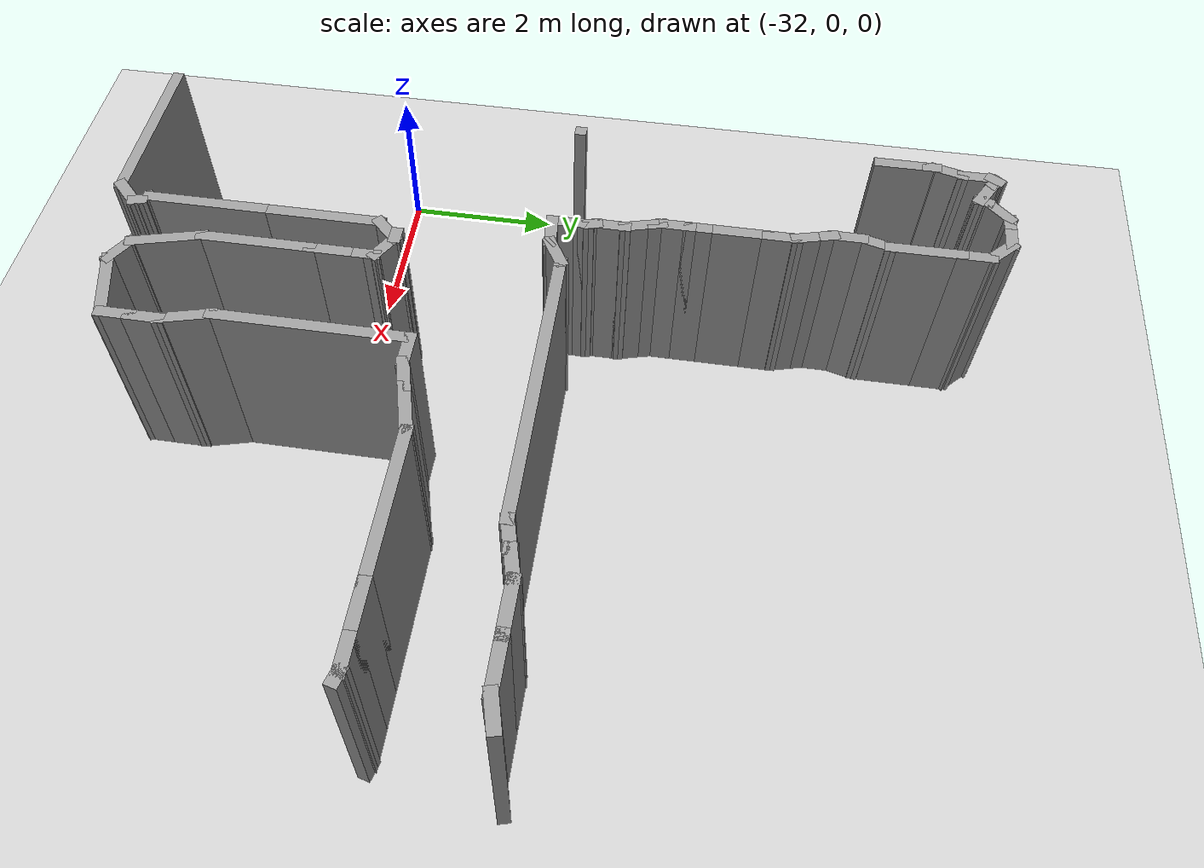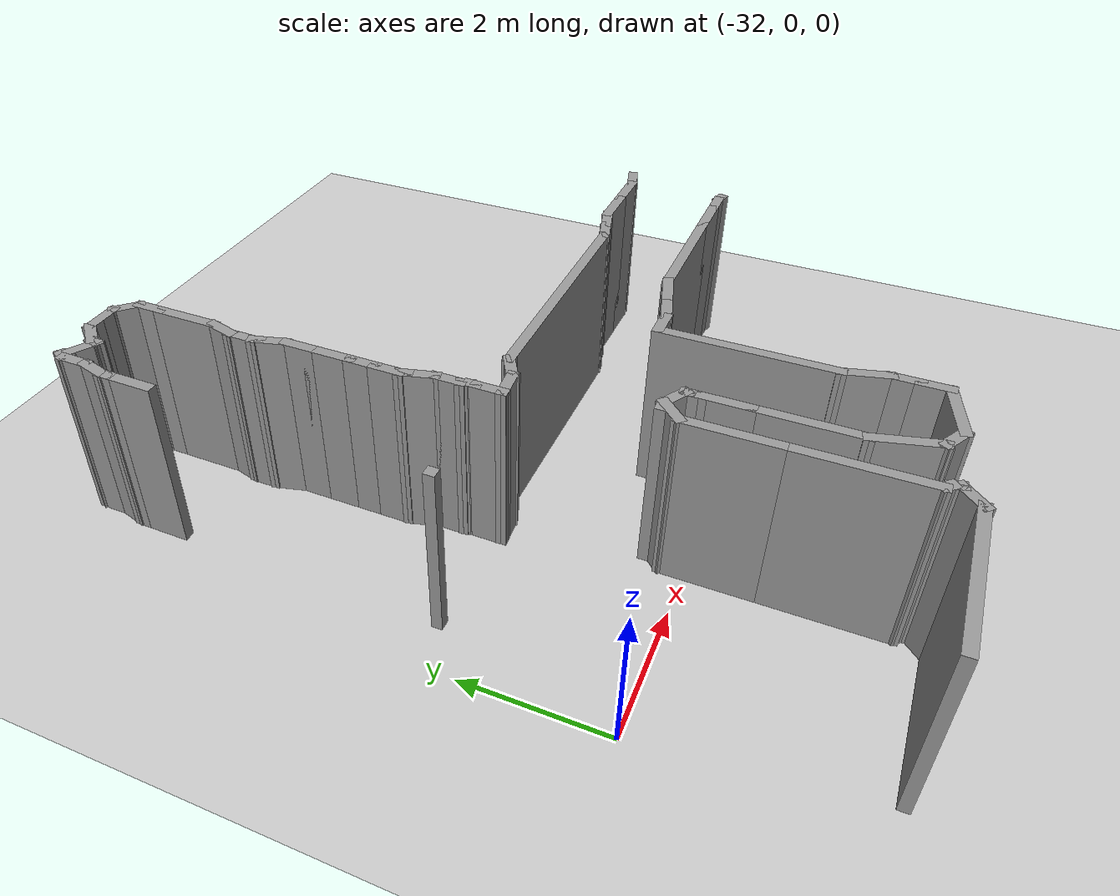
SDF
<sdf version="1.7">
 <world name="default">
  <model name="ground_plane">
   <static>1</static>
   <link name="link">
    <collision name="collision">
     <geometry><plane><normal>0 0 1</normal><size>100 100</size></plane></geometry>
     <surface>
      <contact><collide_bitmask>65535</collide_bitmask></contact>
      <friction><ode><mu>100</mu><mu2>50</mu2></ode></friction>
     </surface>
    </collision>
    <visual name="visual">
     <cast_shadows>0</cast_shadows>
     <geometry><plane><normal>0 0 1</normal><size>100 100</size></plane></geometry>
     <material>
      <script><uri>file://media/materials/scripts/gazebo.material</uri><name>Gazebo/Grey</name></script>
     </material>
    </visual>
   </link>
  </model>
  <model name="robovisor_env">
   <pose>-13 -0.201839 0 0 0 3.14</pose>
   <link name="Wall_161">
    <collision name="Wall_161_Collision">
     <geometry><box><size>0.25 0.15 2.5</size></box></geometry>
     <pose>0 0 1.25 0 -0 0</pose>
    </collision>
    <visual name="Wall_161_Visual">
     <pose>0 0 1.25 0 -0 0</pose>
     <geometry><box><size>0.25 0.15 2.5</size></box></geometry>
     <material>
      <script><uri>file://media/materials/scripts/gazebo.material</uri><name>Gazebo/Grey</name></script>
      <ambient>1 1 1 1</ambient>
     </material>
     <meta><layer>0</layer></meta>
    </visual>
    <pose>10.451 -1.52035 0 0 -0 -0.261799</pose>
   </link>
   <link name="Wall_162">
    <collision name="Wall_162_Collision">
     <geometry><box><size>0.5 0.15 2.5</size></box></geometry>
     <pose>0 0 1.25 0 -0 0</pose>
    </collision>
    <visual name="Wall_162_Visual">
     <pose>0 0 1.25 0 -0 0</pose>
     <geometry><box><size>0.5 0.15 2.5</size></box></geometry>
     <material>
      <script><uri>file://media/materials/scripts/gazebo.material</uri><name>Gazebo/Grey</name></script>
      <ambient>1 1 1 1</ambient>
     </material>
     <meta><layer>0</layer></meta>
    </visual>
    <pose>10.6743 -1.53329 0 0 -0 0</pose>
   </link>
   <link name="Wall_163">
    <collision name="Wall_163_Collision">
     <geometry><box><size>0.75 0.15 2.5</size></box></geometry>
     <pose>0 0 1.25 0 -0 0</pose>
    </collision>
    <visual name="Wall_163_Visual">
     <pose>0 0 1.25 0 -0 0</pose>
     <geometry><box><size>0.75 0.15 2.5</size></box></geometry>
     <material>
      <script><uri>file://media/materials/scripts/gazebo.material</uri><name>Gazebo/Grey</name></script>
      <ambient>1 1 1 1</ambient>
     </material>
     <meta><layer>0</layer></meta>
    </visual>
    <pose>11.1493 -1.53329 0 0 -0 0</pose>
   </link>
   <link name="Wall_164">
    <collision name="Wall_164_Collision">
     <geometry><box><size>2 0.15 2.5</size></box></geometry>
     <pose>0 0 1.25 0 -0 0</pose>
    </collision>
    <visual name="Wall_164_Visual">
     <pose>0 0 1.25 0 -0 0</pose>
     <geometry><box><size>2 0.15 2.5</size></box></geometry>
     <material>
      <script><uri>file://media/materials/scripts/gazebo.material</uri><name>Gazebo/Grey</name></script>
      <ambient>1 1 1 1</ambient>
     </material>
     <meta><layer>0</layer></meta>
    </visual>
    <pose>12.3743 -1.53329 0 0 -0 0</pose>
   </link>
   <link name="Wall_165">
    <collision name="Wall_165_Collision">
     <geometry><box><size>0.75 0.15 2.5</size></box></geometry>
     <pose>0 0 1.25 0 -0 0</pose>
    </collision>
    <visual name="Wall_165_Visual">
     <pose>0 0 1.25 0 -0 0</pose>
     <geometry><box><size>0.75 0.15 2.5</size></box></geometry>
     <material>
      <script><uri>file://media/materials/scripts/gazebo.material</uri><name>Gazebo/Grey</name></script>
      <ambient>1 1 1 1</ambient>
     </material>
     <meta><layer>0</layer></meta>
    </visual>
    <pose>13.5891 -1.45564 0 0 -0 0.261799</pose>
   </link>
   <link name="Wall_166">
    <collision name="Wall_166_Collision">
     <geometry><box><size>0.5 0.15 2.5</size></box></geometry>
     <pose>0 0 1.25 0 -0 0</pose>
    </collision>
    <visual name="Wall_166_Visual">
     <pose>0 0 1.25 0 -0 0</pose>
     <geometry><box><size>0.5 0.15 2.5</size></box></geometry>
     <material>
      <script><uri>file://media/materials/scripts/gazebo.material</uri><name>Gazebo/Grey</name></script>
      <ambient>1 1 1 1</ambient>
     </material>
     <meta><layer>0</layer></meta>
    </visual>
    <pose>14.0479 -1.3327 0 0 -0 0.261799</pose>
   </link>
   <link name="Wall_167">
    <collision name="Wall_167_Collision">
     <geometry><box><size>0.5 0.15 2.5</size></box></geometry>
     <pose>0 0 1.25 0 -0 0</pose>
    </collision>
    <visual name="Wall_167_Visual">
     <pose>0 0 1.25 0 -0 0</pose>
     <geometry><box><size>0.5 0.15 2.5</size></box></geometry>
     <material>
      <script><uri>file://media/materials/scripts/gazebo.material</uri><name>Gazebo/Grey</name></script>
      <ambient>1 1 1 1</ambient>
     </material>
     <meta><layer>0</layer></meta>
    </visual>
    <pose>14.3919 -1.28741 0 0 -0 0</pose>
   </link>
   <link name="Wall_168">
    <collision name="Wall_168_Collision">
     <geometry><box><size>2.5 0.15 2.5</size></box></geometry>
     <pose>0 0 1.25 0 -0 0</pose>
    </collision>
    <visual name="Wall_168_Visual">
     <pose>0 0 1.25 0 -0 0</pose>
     <geometry><box><size>2.5 0.15 2.5</size></box></geometry>
     <material>
      <script><uri>file://media/materials/scripts/gazebo.material</uri><name>Gazebo/Grey</name></script>
      <ambient>1 1 1 1</ambient>
     </material>
     <meta><layer>0</layer></meta>
    </visual>
    <pose>14.5669 -0.112408 0 0 -0 1.5708</pose>
   </link>
   <link name="Wall_169">
    <collision name="Wall_169_Collision">
     <geometry><box><size>0.75 0.15 2.5</size></box></geometry>
     <pose>0 0 1.25 0 -0 0</pose>
    </collision>
    <visual name="Wall_169_Visual">
     <pose>0 0 1.25 0 -0 0</pose>
     <geometry><box><size>0.75 0.15 2.5</size></box></geometry>
     <material>
      <script><uri>file://media/materials/scripts/gazebo.material</uri><name>Gazebo/Grey</name></script>
      <ambient>1 1 1 1</ambient>
     </material>
     <meta><layer>0</layer></meta>
    </visual>
    <pose>14.4893 1.35237 0 0 -0 1.8326</pose>
   </link>
   <link name="Wall_170">
    <collision name="Wall_170_Collision">
     <geometry><box><size>0.5 0.15 2.5</size></box></geometry>
     <pose>0 0 1.25 0 -0 0</pose>
    </collision>
    <visual name="Wall_170_Visual">
     <pose>0 0 1.25 0 -0 0</pose>
     <geometry><box><size>0.5 0.15 2.5</size></box></geometry>
     <material>
      <script><uri>file://media/materials/scripts/gazebo.material</uri><name>Gazebo/Grey</name></script>
      <ambient>1 1 1 1</ambient>
     </material>
     <meta><layer>0</layer></meta>
    </visual>
    <pose>14.4116 1.81715 0 0 -0 1.5708</pose>
   </link>
   <link name="Wall_171">
    <collision name="Wall_171_Collision">
     <geometry><box><size>0.5 0.15 2.5</size></box></geometry>
     <pose>0 0 1.25 0 -0 0</pose>
    </collision>
    <visual name="Wall_171_Visual">
     <pose>0 0 1.25 0 -0 0</pose>
     <geometry><box><size>0.5 0.15 2.5</size></box></geometry>
     <material>
      <script><uri>file://media/materials/scripts/gazebo.material</uri><name>Gazebo/Grey</name></script>
      <ambient>1 1 1 1</ambient>
     </material>
     <meta><layer>0</layer></meta>
    </visual>
    <pose>14.4116 2.16715 0 0 -0 1.5708</pose>
   </link>
   <link name="Wall_172">
    <collision name="Wall_172_Collision">
     <geometry><box><size>1 0.15 2.5</size></box></geometry>
     <pose>0 0 1.25 0 -0 0</pose>
    </collision>
    <visual name="Wall_172_Visual">
     <pose>0 0 1.25 0 -0 0</pose>
     <geometry><box><size>1 0.15 2.5</size></box></geometry>
     <material>
      <script><uri>file://media/materials/scripts/gazebo.material</uri><name>Gazebo/Grey</name></script>
      <ambient>1 1 1 1</ambient>
     </material>
     <meta><layer>0</layer></meta>
    </visual>
    <pose>14.8221 2.45214 0 0 -0 0.261799</pose>
   </link>
   <link name="Wall_173">
    <collision name="Wall_173_Collision">
     <geometry><box><size>0.5 0.15 2.5</size></box></geometry>
     <pose>0 0 1.25 0 -0 0</pose>
    </collision>
    <visual name="Wall_173_Visual">
     <pose>0 0 1.25 0 -0 0</pose>
     <geometry><box><size>0.5 0.15 2.5</size></box></geometry>
     <material>
      <script><uri>file://media/materials/scripts/gazebo.material</uri><name>Gazebo/Grey</name></script>
      <ambient>1 1 1 1</ambient>
     </material>
     <meta><layer>0</layer></meta>
    </visual>
    <pose>15.3842 2.47464 0 0 -0 -0.523599</pose>
   </link>
   <link name="Wall_174">
    <collision name="Wall_174_Collision">
     <geometry><box><size>0.15 0.15 2.5</size></box></geometry>
     <pose>0 0 1.25 0 -0 0</pose>
    </collision>
    <visual name="Wall_174_Visual">
     <pose>0 0 1.25 0 -0 0</pose>
     <geometry><box><size>0.15 0.15 2.5</size></box></geometry>
     <material>
      <script><uri>file://media/materials/scripts/gazebo.material</uri><name>Gazebo/Grey</name></script>
      <ambient>1 1 1 1</ambient>
     </material>
     <meta><layer>0</layer></meta>
    </visual>
    <pose>15.5358 2.38714 0 0 -0 0</pose>
   </link>
   <link name="Wall_175">
    <collision name="Wall_175_Collision">
     <geometry><box><size>1 0.15 2.5</size></box></geometry>
     <pose>0 0 1.25 0 -0 0</pose>
    </collision>
    <visual name="Wall_175_Visual">
     <pose>0 0 1.25 0 -0 0</pose>
     <geometry><box><size>1 0.15 2.5</size></box></geometry>
     <material>
      <script><uri>file://media/materials/scripts/gazebo.material</uri><name>Gazebo/Grey</name></script>
      <ambient>1 1 1 1</ambient>
     </material>
     <meta><layer>0</layer></meta>
    </visual>
    <pose>15.6458 1.97663 0 0 -0 -1.309</pose>
   </link>
   <link name="Wall_176">
    <collision name="Wall_176_Collision">
     <geometry><box><size>1.5 0.15 2.5</size></box></geometry>
     <pose>0 0 1.25 0 -0 0</pose>
    </collision>
    <visual name="Wall_176_Visual">
     <pose>0 0 1.25 0 -0 0</pose>
     <geometry><box><size>1.5 0.15 2.5</size></box></geometry>
     <material>
      <script><uri>file://media/materials/scripts/gazebo.material</uri><name>Gazebo/Grey</name></script>
      <ambient>1 1 1 1</ambient>
     </material>
     <meta><layer>0</layer></meta>
    </visual>
    <pose>15.7558 0.891106 0 0 -0 -1.5708</pose>
   </link>
   <link name="Wall_177">
    <collision name="Wall_177_Collision">
     <geometry><box><size>0.75 0.15 2.5</size></box></geometry>
     <pose>0 0 1.25 0 -0 0</pose>
    </collision>
    <visual name="Wall_177_Visual">
     <pose>0 0 1.25 0 -0 0</pose>
     <geometry><box><size>0.75 0.15 2.5</size></box></geometry>
     <material>
      <script><uri>file://media/materials/scripts/gazebo.material</uri><name>Gazebo/Grey</name></script>
      <ambient>1 1 1 1</ambient>
     </material>
     <meta><layer>0</layer></meta>
    </visual>
    <pose>15.7558 -0.083894 0 0 -0 -1.5708</pose>
   </link>
   <link name="Wall_178">
    <collision name="Wall_178_Collision">
     <geometry><box><size>0.25 0.15 2.5</size></box></geometry>
     <pose>0 0 1.25 0 -0 0</pose>
    </collision>
    <visual name="Wall_178_Visual">
     <pose>0 0 1.25 0 -0 0</pose>
     <geometry><box><size>0.25 0.15 2.5</size></box></geometry>
     <material>
      <script><uri>file://media/materials/scripts/gazebo.material</uri><name>Gazebo/Grey</name></script>
      <ambient>1 1 1 1</ambient>
     </material>
     <meta><layer>0</layer></meta>
    </visual>
    <pose>15.7558 -0.433894 0 0 -0 -1.5708</pose>
   </link>
   <link name="Wall_179">
    <collision name="Wall_179_Collision">
     <geometry><box><size>0.25 0.15 2.5</size></box></geometry>
     <pose>0 0 1.25 0 -0 0</pose>
    </collision>
    <visual name="Wall_179_Visual">
     <pose>0 0 1.25 0 -0 0</pose>
     <geometry><box><size>0.25 0.15 2.5</size></box></geometry>
     <material>
      <script><uri>file://media/materials/scripts/gazebo.material</uri><name>Gazebo/Grey</name></script>
      <ambient>1 1 1 1</ambient>
     </material>
     <meta><layer>0</layer></meta>
    </visual>
    <pose>15.7558 -0.533894 0 0 -0 -1.5708</pose>
   </link>
   <link name="Wall_180">
    <collision name="Wall_180_Collision">
     <geometry><box><size>0.5 0.15 2.5</size></box></geometry>
     <pose>0 0 1.25 0 -0 0</pose>
    </collision>
    <visual name="Wall_180_Visual">
     <pose>0 0 1.25 0 -0 0</pose>
     <geometry><box><size>0.5 0.15 2.5</size></box></geometry>
     <material>
      <script><uri>file://media/materials/scripts/gazebo.material</uri><name>Gazebo/Grey</name></script>
      <ambient>1 1 1 1</ambient>
     </material>
     <meta><layer>0</layer></meta>
    </visual>
    <pose>15.9073 -0.671394 0 0 -0 -0.523599</pose>
   </link>
   <link name="Wall_181">
    <collision name="Wall_181_Collision">
     <geometry><box><size>0.25 0.15 2.5</size></box></geometry>
     <pose>0 0 1.25 0 -0 0</pose>
    </collision>
    <visual name="Wall_181_Visual">
     <pose>0 0 1.25 0 -0 0</pose>
     <geometry><box><size>0.25 0.15 2.5</size></box></geometry>
     <material>
      <script><uri>file://media/materials/scripts/gazebo.material</uri><name>Gazebo/Grey</name></script>
      <ambient>1 1 1 1</ambient>
     </material>
     <meta><layer>0</layer></meta>
    </visual>
    <pose>16.1089 -0.758894 0 0 -0 0</pose>
   </link>
   <link name="Wall_183">
    <collision name="Wall_183_Collision">
     <geometry><box><size>0.5 0.15 2.5</size></box></geometry>
     <pose>0 0 1.25 0 -0 0</pose>
    </collision>
    <visual name="Wall_183_Visual">
     <pose>0 0 1.25 0 -0 0</pose>
     <geometry><box><size>0.5 0.15 2.5</size></box></geometry>
     <material>
      <script><uri>file://media/materials/scripts/gazebo.material</uri><name>Gazebo/Grey</name></script>
      <ambient>1 1 1 1</ambient>
     </material>
     <meta><layer>0</layer></meta>
    </visual>
    <pose>16.1826 -0.63515 0 0 -0 0.785398</pose>
   </link>
   <link name="Wall_184">
    <collision name="Wall_184_Collision">
     <geometry><box><size>1.5 0.15 2.5</size></box></geometry>
     <pose>0 0 1.25 0 -0 0</pose>
    </collision>
    <visual name="Wall_184_Visual">
     <pose>0 0 1.25 0 -0 0</pose>
     <geometry><box><size>1.5 0.15 2.5</size></box></geometry>
     <material>
      <script><uri>file://media/materials/scripts/gazebo.material</uri><name>Gazebo/Grey</name></script>
      <ambient>1 1 1 1</ambient>
     </material>
     <meta><layer>0</layer></meta>
    </visual>
    <pose>16.3064 0.163594 0 0 -0 1.5708</pose>
   </link>
   <link name="Wall_185">
    <collision name="Wall_185_Collision">
     <geometry><box><size>1.75 0.15 2.5</size></box></geometry>
     <pose>0 0 1.25 0 -0 0</pose>
    </collision>
    <visual name="Wall_185_Visual">
     <pose>0 0 1.25 0 -0 0</pose>
     <geometry><box><size>1.75 0.15 2.5</size></box></geometry>
     <material>
      <script><uri>file://media/materials/scripts/gazebo.material</uri><name>Gazebo/Grey</name></script>
      <ambient>1 1 1 1</ambient>
     </material>
     <meta><layer>0</layer></meta>
    </visual>
    <pose>16.3064 1.63859 0 0 -0 1.5708</pose>
   </link>
   <link name="Wall_186">
    <collision name="Wall_186_Collision">
     <geometry><box><size>0.25 0.15 2.5</size></box></geometry>
     <pose>0 0 1.25 0 -0 0</pose>
    </collision>
    <visual name="Wall_186_Visual">
     <pose>0 0 1.25 0 -0 0</pose>
     <geometry><box><size>0.25 0.15 2.5</size></box></geometry>
     <material>
      <script><uri>file://media/materials/scripts/gazebo.material</uri><name>Gazebo/Grey</name></script>
      <ambient>1 1 1 1</ambient>
     </material>
     <meta><layer>0</layer></meta>
    </visual>
    <pose>16.271 2.47395 0 0 -0 2.35619</pose>
   </link>
   <link name="Wall_187">
    <collision name="Wall_187_Collision">
     <geometry><box><size>0.25 0.15 2.5</size></box></geometry>
     <pose>0 0 1.25 0 -0 0</pose>
    </collision>
    <visual name="Wall_187_Visual">
     <pose>0 0 1.25 0 -0 0</pose>
     <geometry><box><size>0.25 0.15 2.5</size></box></geometry>
     <material>
      <script><uri>file://media/materials/scripts/gazebo.material</uri><name>Gazebo/Grey</name></script>
      <ambient>1 1 1 1</ambient>
     </material>
     <meta><layer>0</layer></meta>
    </visual>
    <pose>16.2227 2.5576 0 0 -0 1.8326</pose>
   </link>
   <link name="Wall_188">
    <collision name="Wall_188_Collision">
     <geometry><box><size>0.5 0.15 2.5</size></box></geometry>
     <pose>0 0 1.25 0 -0 0</pose>
    </collision>
    <visual name="Wall_188_Visual">
     <pose>0 0 1.25 0 -0 0</pose>
     <geometry><box><size>0.5 0.15 2.5</size></box></geometry>
     <material>
      <script><uri>file://media/materials/scripts/gazebo.material</uri><name>Gazebo/Grey</name></script>
      <ambient>1 1 1 1</ambient>
     </material>
     <meta><layer>0</layer></meta>
    </visual>
    <pose>16.3335 2.72964 0 0 -0 0.785398</pose>
   </link>
   <link name="Wall_189">
    <collision name="Wall_189_Collision">
     <geometry><box><size>2.25 0.15 2.5</size></box></geometry>
     <pose>0 0 1.25 0 -0 0</pose>
    </collision>
    <visual name="Wall_189_Visual">
     <pose>0 0 1.25 0 -0 0</pose>
     <geometry><box><size>2.25 0.15 2.5</size></box></geometry>
     <material>
      <script><uri>file://media/materials/scripts/gazebo.material</uri><name>Gazebo/Grey</name></script>
      <ambient>1 1 1 1</ambient>
     </material>
     <meta><layer>0</layer></meta>
    </visual>
    <pose>17.5073 2.85338 0 0 -0 0</pose>
   </link>
   <link name="Wall_253">
    <collision name="Wall_253_Collision">
     <geometry><box><size>0.75 0.15 2.5</size></box></geometry>
     <pose>0 0 1.25 0 -0 0</pose>
    </collision>
    <visual name="Wall_253_Visual">
     <pose>0 0 1.25 0 -0 0</pose>
     <geometry><box><size>0.75 0.15 2.5</size></box></geometry>
     <material>
      <script><uri>file://media/materials/scripts/gazebo.material</uri><name>Gazebo/Grey</name></script>
      <ambient>1 1 1 1</ambient>
     </material>
     <meta><layer>0</layer></meta>
    </visual>
    <pose>18.3016 -6.87668 0 0 -0 -1.5708</pose>
   </link>
   <link name="Wall_254">
    <collision name="Wall_254_Collision">
     <geometry><box><size>0.25 0.15 2.5</size></box></geometry>
     <pose>0 0 1.25 0 -0 0</pose>
    </collision>
    <visual name="Wall_254_Visual">
     <pose>0 0 1.25 0 -0 0</pose>
     <geometry><box><size>0.25 0.15 2.5</size></box></geometry>
     <material>
      <script><uri>file://media/materials/scripts/gazebo.material</uri><name>Gazebo/Grey</name></script>
      <ambient>1 1 1 1</ambient>
     </material>
     <meta><layer>0</layer></meta>
    </visual>
    <pose>18.3016 -7.22668 0 0 -0 -1.5708</pose>
   </link>
   <link name="Wall_255">
    <collision name="Wall_255_Collision">
     <geometry><box><size>0.5 0.15 2.5</size></box></geometry>
     <pose>0 0 1.25 0 -0 0</pose>
    </collision>
    <visual name="Wall_255_Visual">
     <pose>0 0 1.25 0 -0 0</pose>
     <geometry><box><size>0.5 0.15 2.5</size></box></geometry>
     <material>
      <script><uri>file://media/materials/scripts/gazebo.material</uri><name>Gazebo/Grey</name></script>
      <ambient>1 1 1 1</ambient>
     </material>
     <meta><layer>0</layer></meta>
    </visual>
    <pose>18.2563 -7.44572 0 0 -0 -1.8326</pose>
   </link>
   <link name="Wall_256">
    <collision name="Wall_256_Collision">
     <geometry><box><size>0.5 0.15 2.5</size></box></geometry>
     <pose>0 0 1.25 0 -0 0</pose>
    </collision>
    <visual name="Wall_256_Visual">
     <pose>0 0 1.25 0 -0 0</pose>
     <geometry><box><size>0.5 0.15 2.5</size></box></geometry>
     <material>
      <script><uri>file://media/materials/scripts/gazebo.material</uri><name>Gazebo/Grey</name></script>
      <ambient>1 1 1 1</ambient>
     </material>
     <meta><layer>0</layer></meta>
    </visual>
    <pose>18.211 -7.78976 0 0 -0 -1.5708</pose>
   </link>
   <link name="Wall_257">
    <collision name="Wall_257_Collision">
     <geometry><box><size>0.25 0.15 2.5</size></box></geometry>
     <pose>0 0 1.25 0 -0 0</pose>
    </collision>
    <visual name="Wall_257_Visual">
     <pose>0 0 1.25 0 -0 0</pose>
     <geometry><box><size>0.25 0.15 2.5</size></box></geometry>
     <material>
      <script><uri>file://media/materials/scripts/gazebo.material</uri><name>Gazebo/Grey</name></script>
      <ambient>1 1 1 1</ambient>
     </material>
     <meta><layer>0</layer></meta>
    </visual>
    <pose>18.186 -8.00806 0 0 -0 -2.0944</pose>
   </link>
   <link name="Wall_258">
    <collision name="Wall_258_Collision">
     <geometry><box><size>0.25 0.15 2.5</size></box></geometry>
     <pose>0 0 1.25 0 -0 0</pose>
    </collision>
    <visual name="Wall_258_Visual">
     <pose>0 0 1.25 0 -0 0</pose>
     <geometry><box><size>0.25 0.15 2.5</size></box></geometry>
     <material>
      <script><uri>file://media/materials/scripts/gazebo.material</uri><name>Gazebo/Grey</name></script>
      <ambient>1 1 1 1</ambient>
     </material>
     <meta><layer>0</layer></meta>
    </visual>
    <pose>18.1257 -8.016 0 0 -0 2.35619</pose>
   </link>
   <link name="Wall_259">
    <collision name="Wall_259_Collision">
     <geometry><box><size>0.5 0.15 2.5</size></box></geometry>
     <pose>0 0 1.25 0 -0 0</pose>
    </collision>
    <visual name="Wall_259_Visual">
     <pose>0 0 1.25 0 -0 0</pose>
     <geometry><box><size>0.5 0.15 2.5</size></box></geometry>
     <material>
      <script><uri>file://media/materials/scripts/gazebo.material</uri><name>Gazebo/Grey</name></script>
      <ambient>1 1 1 1</ambient>
     </material>
     <meta><layer>0</layer></meta>
    </visual>
    <pose>17.9388 -7.89315 0 0 -0 2.61799</pose>
   </link>
   <link name="Wall_260">
    <collision name="Wall_260_Collision">
     <geometry><box><size>0.15 0.15 2.5</size></box></geometry>
     <pose>0 0 1.25 0 -0 0</pose>
    </collision>
    <visual name="Wall_260_Visual">
     <pose>0 0 1.25 0 -0 0</pose>
     <geometry><box><size>0.15 0.15 2.5</size></box></geometry>
     <material>
      <script><uri>file://media/materials/scripts/gazebo.material</uri><name>Gazebo/Grey</name></script>
      <ambient>1 1 1 1</ambient>
     </material>
     <meta><layer>0</layer></meta>
    </visual>
    <pose>17.7872 -7.80565 0 0 -0 0</pose>
   </link>
   <link name="Wall_261">
    <collision name="Wall_261_Collision">
     <geometry><box><size>0.15 0.15 2.5</size></box></geometry>
     <pose>0 0 1.25 0 -0 0</pose>
    </collision>
    <visual name="Wall_261_Visual">
     <pose>0 0 1.25 0 -0 0</pose>
     <geometry><box><size>0.15 0.15 2.5</size></box></geometry>
     <material>
      <script><uri>file://media/materials/scripts/gazebo.material</uri><name>Gazebo/Grey</name></script>
      <ambient>1 1 1 1</ambient>
     </material>
     <meta><layer>0</layer></meta>
    </visual>
    <pose>17.7872 -7.80565 0 0 -0 0</pose>
   </link>
   <link name="Wall_262">
    <collision name="Wall_262_Collision">
     <geometry><box><size>0.25 0.15 2.5</size></box></geometry>
     <pose>0 0 1.25 0 -0 0</pose>
    </collision>
    <visual name="Wall_262_Visual">
     <pose>0 0 1.25 0 -0 0</pose>
     <geometry><box><size>0.25 0.15 2.5</size></box></geometry>
     <material>
      <script><uri>file://media/materials/scripts/gazebo.material</uri><name>Gazebo/Grey</name></script>
      <ambient>1 1 1 1</ambient>
     </material>
     <meta><layer>0</layer></meta>
    </visual>
    <pose>17.7743 -7.85395 0 0 -0 -1.8326</pose>
   </link>
   <link name="Wall_263">
    <collision name="Wall_263_Collision">
     <geometry><box><size>0.5 0.15 2.5</size></box></geometry>
     <pose>0 0 1.25 0 -0 0</pose>
    </collision>
    <visual name="Wall_263_Visual">
     <pose>0 0 1.25 0 -0 0</pose>
     <geometry><box><size>0.5 0.15 2.5</size></box></geometry>
     <material>
      <script><uri>file://media/materials/scripts/gazebo.material</uri><name>Gazebo/Grey</name></script>
      <ambient>1 1 1 1</ambient>
     </material>
     <meta><layer>0</layer></meta>
    </visual>
    <pose>17.6376 -8.02599 0 0 -0 -2.35619</pose>
   </link>
   <link name="Wall_264">
    <collision name="Wall_264_Collision">
     <geometry><box><size>0.25 0.15 2.5</size></box></geometry>
     <pose>0 0 1.25 0 -0 0</pose>
    </collision>
    <visual name="Wall_264_Visual">
     <pose>0 0 1.25 0 -0 0</pose>
     <geometry><box><size>0.25 0.15 2.5</size></box></geometry>
     <material>
      <script><uri>file://media/materials/scripts/gazebo.material</uri><name>Gazebo/Grey</name></script>
      <ambient>1 1 1 1</ambient>
     </material>
     <meta><layer>0</layer></meta>
    </visual>
    <pose>17.4639 -8.14973 0 0 -0 3.14159</pose>
   </link>
   <link name="Wall_265">
    <collision name="Wall_265_Collision">
     <geometry><box><size>0.5 0.15 2.5</size></box></geometry>
     <pose>0 0 1.25 0 -0 0</pose>
    </collision>
    <visual name="Wall_265_Visual">
     <pose>0 0 1.25 0 -0 0</pose>
     <geometry><box><size>0.5 0.15 2.5</size></box></geometry>
     <material>
      <script><uri>file://media/materials/scripts/gazebo.material</uri><name>Gazebo/Grey</name></script>
      <ambient>1 1 1 1</ambient>
     </material>
     <meta><layer>0</layer></meta>
    </visual>
    <pose>17.2389 -8.14973 0 0 -0 3.14159</pose>
   </link>
   <link name="Wall_266">
    <collision name="Wall_266_Collision">
     <geometry><box><size>0.15 0.15 2.5</size></box></geometry>
     <pose>0 0 1.25 0 -0 0</pose>
    </collision>
    <visual name="Wall_266_Visual">
     <pose>0 0 1.25 0 -0 0</pose>
     <geometry><box><size>0.15 0.15 2.5</size></box></geometry>
     <material>
      <script><uri>file://media/materials/scripts/gazebo.material</uri><name>Gazebo/Grey</name></script>
      <ambient>1 1 1 1</ambient>
     </material>
     <meta><layer>0</layer></meta>
    </visual>
    <pose>17.0639 -8.14973 0 0 -0 0</pose>
   </link>
   <link name="Wall_267">
    <collision name="Wall_267_Collision">
     <geometry><box><size>0.5 0.15 2.5</size></box></geometry>
     <pose>0 0 1.25 0 -0 0</pose>
    </collision>
    <visual name="Wall_267_Visual">
     <pose>0 0 1.25 0 -0 0</pose>
     <geometry><box><size>0.5 0.15 2.5</size></box></geometry>
     <material>
      <script><uri>file://media/materials/scripts/gazebo.material</uri><name>Gazebo/Grey</name></script>
      <ambient>1 1 1 1</ambient>
     </material>
     <meta><layer>0</layer></meta>
    </visual>
    <pose>16.9401 -8.02599 0 0 -0 2.35619</pose>
   </link>
   <link name="Wall_268">
    <collision name="Wall_268_Collision">
     <geometry><box><size>0.5 0.15 2.5</size></box></geometry>
     <pose>0 0 1.25 0 -0 0</pose>
    </collision>
    <visual name="Wall_268_Visual">
     <pose>0 0 1.25 0 -0 0</pose>
     <geometry><box><size>0.5 0.15 2.5</size></box></geometry>
     <material>
      <script><uri>file://media/materials/scripts/gazebo.material</uri><name>Gazebo/Grey</name></script>
      <ambient>1 1 1 1</ambient>
     </material>
     <meta><layer>0</layer></meta>
    </visual>
    <pose>16.8164 -7.72724 0 0 -0 1.5708</pose>
   </link>
   <link name="Wall_269">
    <collision name="Wall_269_Collision">
     <geometry><box><size>1 0.15 2.5</size></box></geometry>
     <pose>0 0 1.25 0 -0 0</pose>
    </collision>
    <visual name="Wall_269_Visual">
     <pose>0 0 1.25 0 -0 0</pose>
     <geometry><box><size>1 0.15 2.5</size></box></geometry>
     <material>
      <script><uri>file://media/materials/scripts/gazebo.material</uri><name>Gazebo/Grey</name></script>
      <ambient>1 1 1 1</ambient>
     </material>
     <meta><layer>0</layer></meta>
    </visual>
    <pose>16.8164 -7.12724 0 0 -0 1.5708</pose>
   </link>
   <link name="Wall_270">
    <collision name="Wall_270_Collision">
     <geometry><box><size>0.5 0.15 2.5</size></box></geometry>
     <pose>0 0 1.25 0 -0 0</pose>
    </collision>
    <visual name="Wall_270_Visual">
     <pose>0 0 1.25 0 -0 0</pose>
     <geometry><box><size>0.5 0.15 2.5</size></box></geometry>
     <material>
      <script><uri>file://media/materials/scripts/gazebo.material</uri><name>Gazebo/Grey</name></script>
      <ambient>1 1 1 1</ambient>
     </material>
     <meta><layer>0</layer></meta>
    </visual>
    <pose>16.8617 -6.53321 0 0 -0 1.309</pose>
   </link>
   <link name="Wall_271">
    <collision name="Wall_271_Collision">
     <geometry><box><size>0.5 0.15 2.5</size></box></geometry>
     <pose>0 0 1.25 0 -0 0</pose>
    </collision>
    <visual name="Wall_271_Visual">
     <pose>0 0 1.25 0 -0 0</pose>
     <geometry><box><size>0.5 0.15 2.5</size></box></geometry>
     <material>
      <script><uri>file://media/materials/scripts/gazebo.material</uri><name>Gazebo/Grey</name></script>
      <ambient>1 1 1 1</ambient>
     </material>
     <meta><layer>0</layer></meta>
    </visual>
    <pose>16.907 -6.18917 0 0 -0 1.5708</pose>
   </link>
   <link name="Wall_272">
    <collision name="Wall_272_Collision">
     <geometry><box><size>0.25 0.15 2.5</size></box></geometry>
     <pose>0 0 1.25 0 -0 0</pose>
    </collision>
    <visual name="Wall_272_Visual">
     <pose>0 0 1.25 0 -0 0</pose>
     <geometry><box><size>0.25 0.15 2.5</size></box></geometry>
     <material>
      <script><uri>file://media/materials/scripts/gazebo.material</uri><name>Gazebo/Grey</name></script>
      <ambient>1 1 1 1</ambient>
     </material>
     <meta><layer>0</layer></meta>
    </visual>
    <pose>16.894 -5.96587 0 0 -0 1.8326</pose>
   </link>
   <link name="Wall_273">
    <collision name="Wall_273_Collision">
     <geometry><box><size>0.5 0.15 2.5</size></box></geometry>
     <pose>0 0 1.25 0 -0 0</pose>
    </collision>
    <visual name="Wall_273_Visual">
     <pose>0 0 1.25 0 -0 0</pose>
     <geometry><box><size>0.5 0.15 2.5</size></box></geometry>
     <material>
      <script><uri>file://media/materials/scripts/gazebo.material</uri><name>Gazebo/Grey</name></script>
      <ambient>1 1 1 1</ambient>
     </material>
     <meta><layer>0</layer></meta>
    </visual>
    <pose>16.8358 -5.74854 0 0 -0 1.8326</pose>
   </link>
   <link name="Wall_274">
    <collision name="Wall_274_Collision">
     <geometry><box><size>0.5 0.15 2.5</size></box></geometry>
     <pose>0 0 1.25 0 -0 0</pose>
    </collision>
    <visual name="Wall_274_Visual">
     <pose>0 0 1.25 0 -0 0</pose>
     <geometry><box><size>0.5 0.15 2.5</size></box></geometry>
     <material>
      <script><uri>file://media/materials/scripts/gazebo.material</uri><name>Gazebo/Grey</name></script>
      <ambient>1 1 1 1</ambient>
     </material>
     <meta><layer>0</layer></meta>
    </visual>
    <pose>16.7905 -5.4045 0 0 -0 1.5708</pose>
   </link>
   <link name="Wall_275">
    <collision name="Wall_275_Collision">
     <geometry><box><size>0.75 0.15 2.5</size></box></geometry>
     <pose>0 0 1.25 0 -0 0</pose>
    </collision>
    <visual name="Wall_275_Visual">
     <pose>0 0 1.25 0 -0 0</pose>
     <geometry><box><size>0.75 0.15 2.5</size></box></geometry>
     <material>
      <script><uri>file://media/materials/scripts/gazebo.material</uri><name>Gazebo/Grey</name></script>
      <ambient>1 1 1 1</ambient>
     </material>
     <meta><layer>0</layer></meta>
    </visual>
    <pose>16.7905 -4.9295 0 0 -0 1.5708</pose>
   </link>
   <link name="Wall_276">
    <collision name="Wall_276_Collision">
     <geometry><box><size>0.5 0.15 2.5</size></box></geometry>
     <pose>0 0 1.25 0 -0 0</pose>
    </collision>
    <visual name="Wall_276_Visual">
     <pose>0 0 1.25 0 -0 0</pose>
     <geometry><box><size>0.5 0.15 2.5</size></box></geometry>
     <material>
      <script><uri>file://media/materials/scripts/gazebo.material</uri><name>Gazebo/Grey</name></script>
      <ambient>1 1 1 1</ambient>
     </material>
     <meta><layer>0</layer></meta>
    </visual>
    <pose>16.7905 -4.4545 0 0 -0 1.5708</pose>
   </link>
   <link name="Wall_277">
    <collision name="Wall_277_Collision">
     <geometry><box><size>0.5 0.15 2.5</size></box></geometry>
     <pose>0 0 1.25 0 -0 0</pose>
    </collision>
    <visual name="Wall_277_Visual">
     <pose>0 0 1.25 0 -0 0</pose>
     <geometry><box><size>0.5 0.15 2.5</size></box></geometry>
     <material>
      <script><uri>file://media/materials/scripts/gazebo.material</uri><name>Gazebo/Grey</name></script>
      <ambient>1 1 1 1</ambient>
     </material>
     <meta><layer>0</layer></meta>
    </visual>
    <pose>16.7905 -4.1045 0 0 -0 1.5708</pose>
   </link>
   <link name="Wall_278">
    <collision name="Wall_278_Collision">
     <geometry><box><size>0.25 0.15 2.5</size></box></geometry>
     <pose>0 0 1.25 0 -0 0</pose>
    </collision>
    <visual name="Wall_278_Visual">
     <pose>0 0 1.25 0 -0 0</pose>
     <geometry><box><size>0.25 0.15 2.5</size></box></geometry>
     <material>
      <script><uri>file://media/materials/scripts/gazebo.material</uri><name>Gazebo/Grey</name></script>
      <ambient>1 1 1 1</ambient>
     </material>
     <meta><layer>0</layer></meta>
    </visual>
    <pose>16.7775 -3.88121 0 0 -0 1.8326</pose>
   </link>
   <link name="Wall_279">
    <collision name="Wall_279_Collision">
     <geometry><box><size>0.5 0.15 2.5</size></box></geometry>
     <pose>0 0 1.25 0 -0 0</pose>
    </collision>
    <visual name="Wall_279_Visual">
     <pose>0 0 1.25 0 -0 0</pose>
     <geometry><box><size>0.5 0.15 2.5</size></box></geometry>
     <material>
      <script><uri>file://media/materials/scripts/gazebo.material</uri><name>Gazebo/Grey</name></script>
      <ambient>1 1 1 1</ambient>
     </material>
     <meta><layer>0</layer></meta>
    </visual>
    <pose>16.7193 -3.66387 0 0 -0 1.8326</pose>
   </link>
   <link name="Wall_280">
    <collision name="Wall_280_Collision">
     <geometry><box><size>0.15 0.15 2.5</size></box></geometry>
     <pose>0 0 1.25 0 -0 0</pose>
    </collision>
    <visual name="Wall_280_Visual">
     <pose>0 0 1.25 0 -0 0</pose>
     <geometry><box><size>0.15 0.15 2.5</size></box></geometry>
     <material>
      <script><uri>file://media/materials/scripts/gazebo.material</uri><name>Gazebo/Grey</name></script>
      <ambient>1 1 1 1</ambient>
     </material>
     <meta><layer>0</layer></meta>
    </visual>
    <pose>16.674 -3.49484 0 0 -0 0</pose>
   </link>
   <link name="Wall_281">
    <collision name="Wall_281_Collision">
     <geometry><box><size>0.5 0.15 2.5</size></box></geometry>
     <pose>0 0 1.25 0 -0 0</pose>
    </collision>
    <visual name="Wall_281_Visual">
     <pose>0 0 1.25 0 -0 0</pose>
     <geometry><box><size>0.5 0.15 2.5</size></box></geometry>
     <material>
      <script><uri>file://media/materials/scripts/gazebo.material</uri><name>Gazebo/Grey</name></script>
      <ambient>1 1 1 1</ambient>
     </material>
     <meta><layer>0</layer></meta>
    </visual>
    <pose>16.674 -3.31983 0 0 -0 1.5708</pose>
   </link>
   <link name="Wall_282">
    <collision name="Wall_282_Collision">
     <geometry><box><size>0.25 0.15 2.5</size></box></geometry>
     <pose>0 0 1.25 0 -0 0</pose>
    </collision>
    <visual name="Wall_282_Visual">
     <pose>0 0 1.25 0 -0 0</pose>
     <geometry><box><size>0.25 0.15 2.5</size></box></geometry>
     <material>
      <script><uri>file://media/materials/scripts/gazebo.material</uri><name>Gazebo/Grey</name></script>
      <ambient>1 1 1 1</ambient>
     </material>
     <meta><layer>0</layer></meta>
    </visual>
    <pose>16.6611 -3.09654 0 0 -0 1.8326</pose>
   </link>
   <link name="Wall_283">
    <collision name="Wall_283_Collision">
     <geometry><box><size>0.25 0.15 2.5</size></box></geometry>
     <pose>0 0 1.25 0 -0 0</pose>
    </collision>
    <visual name="Wall_283_Visual">
     <pose>0 0 1.25 0 -0 0</pose>
     <geometry><box><size>0.25 0.15 2.5</size></box></geometry>
     <material>
      <script><uri>file://media/materials/scripts/gazebo.material</uri><name>Gazebo/Grey</name></script>
      <ambient>1 1 1 1</ambient>
     </material>
     <meta><layer>0</layer></meta>
    </visual>
    <pose>16.6481 -2.99824 0 0 -0 1.5708</pose>
   </link>
   <link name="Wall_284">
    <collision name="Wall_284_Collision">
     <geometry><box><size>0.5 0.15 2.5</size></box></geometry>
     <pose>0 0 1.25 0 -0 0</pose>
    </collision>
    <visual name="Wall_284_Visual">
     <pose>0 0 1.25 0 -0 0</pose>
     <geometry><box><size>0.5 0.15 2.5</size></box></geometry>
     <material>
      <script><uri>file://media/materials/scripts/gazebo.material</uri><name>Gazebo/Grey</name></script>
      <ambient>1 1 1 1</ambient>
     </material>
     <meta><layer>0</layer></meta>
    </visual>
    <pose>16.6481 -2.77324 0 0 -0 1.5708</pose>
   </link>
   <link name="Wall_294">
    <collision name="Wall_294_Collision">
     <geometry><box><size>0.15 0.15 2.5</size></box></geometry>
     <pose>0 0 1.25 0 -0 0</pose>
    </collision>
    <visual name="Wall_294_Visual">
     <pose>0 0 1.25 0 -0 0</pose>
     <geometry><box><size>0.15 0.15 2.5</size></box></geometry>
     <material>
      <script><uri>file://media/materials/scripts/gazebo.material</uri><name>Gazebo/Grey</name></script>
      <ambient>1 1 1 1</ambient>
     </material>
     <meta><layer>0</layer></meta>
    </visual>
    <pose>18.3071 -2.71924 0 0 -0 0</pose>
   </link>
   <link name="Wall_295">
    <collision name="Wall_295_Collision">
     <geometry><box><size>0.15 0.15 2.5</size></box></geometry>
     <pose>0 0 1.25 0 -0 0</pose>
    </collision>
    <visual name="Wall_295_Visual">
     <pose>0 0 1.25 0 -0 0</pose>
     <geometry><box><size>0.15 0.15 2.5</size></box></geometry>
     <material>
      <script><uri>file://media/materials/scripts/gazebo.material</uri><name>Gazebo/Grey</name></script>
      <ambient>1 1 1 1</ambient>
     </material>
     <meta><layer>0</layer></meta>
    </visual>
    <pose>18.3071 -2.71924 0 0 -0 0</pose>
   </link>
   <link name="Wall_308">
    <collision name="Wall_308_Collision">
     <geometry><box><size>0.5 0.15 2.5</size></box></geometry>
     <pose>0 0 1.25 0 -0 0</pose>
    </collision>
    <visual name="Wall_308_Visual">
     <pose>0 0 1.25 0 -0 0</pose>
     <geometry><box><size>0.5 0.15 2.5</size></box></geometry>
     <material>
      <script><uri>file://media/materials/scripts/gazebo.material</uri><name>Gazebo/Grey</name></script>
      <ambient>1 1 1 1</ambient>
     </material>
     <meta><layer>0</layer></meta>
    </visual>
    <pose>10.3358 -3.0309 0 0 -0 0.261799</pose>
   </link>
   <link name="Wall_309">
    <collision name="Wall_309_Collision">
     <geometry><box><size>0.75 0.15 2.5</size></box></geometry>
     <pose>0 0 1.25 0 -0 0</pose>
    </collision>
    <visual name="Wall_309_Visual">
     <pose>0 0 1.25 0 -0 0</pose>
     <geometry><box><size>0.75 0.15 2.5</size></box></geometry>
     <material>
      <script><uri>file://media/materials/scripts/gazebo.material</uri><name>Gazebo/Grey</name></script>
      <ambient>1 1 1 1</ambient>
     </material>
     <meta><layer>0</layer></meta>
    </visual>
    <pose>10.8049 -2.9856 0 0 -0 0</pose>
   </link>
   <link name="Wall_310">
    <collision name="Wall_310_Collision">
     <geometry><box><size>0.75 0.15 2.5</size></box></geometry>
     <pose>0 0 1.25 0 -0 0</pose>
    </collision>
    <visual name="Wall_310_Visual">
     <pose>0 0 1.25 0 -0 0</pose>
     <geometry><box><size>0.75 0.15 2.5</size></box></geometry>
     <material>
      <script><uri>file://media/materials/scripts/gazebo.material</uri><name>Gazebo/Grey</name></script>
      <ambient>1 1 1 1</ambient>
     </material>
     <meta><layer>0</layer></meta>
    </visual>
    <pose>11.4049 -2.9856 0 0 -0 0</pose>
   </link>
   <link name="Wall_311">
    <collision name="Wall_311_Collision">
     <geometry><box><size>0.5 0.15 2.5</size></box></geometry>
     <pose>0 0 1.25 0 -0 0</pose>
    </collision>
    <visual name="Wall_311_Visual">
     <pose>0 0 1.25 0 -0 0</pose>
     <geometry><box><size>0.5 0.15 2.5</size></box></geometry>
     <material>
      <script><uri>file://media/materials/scripts/gazebo.material</uri><name>Gazebo/Grey</name></script>
      <ambient>1 1 1 1</ambient>
     </material>
     <meta><layer>0</layer></meta>
    </visual>
    <pose>11.8739 -2.94031 0 0 -0 0.261799</pose>
   </link>
   <link name="Wall_312">
    <collision name="Wall_312_Collision">
     <geometry><box><size>0.15 0.15 2.5</size></box></geometry>
     <pose>0 0 1.25 0 -0 0</pose>
    </collision>
    <visual name="Wall_312_Visual">
     <pose>0 0 1.25 0 -0 0</pose>
     <geometry><box><size>0.15 0.15 2.5</size></box></geometry>
     <material>
      <script><uri>file://media/materials/scripts/gazebo.material</uri><name>Gazebo/Grey</name></script>
      <ambient>1 1 1 1</ambient>
     </material>
     <meta><layer>0</layer></meta>
    </visual>
    <pose>12.043 -2.89502 0 0 -0 0</pose>
   </link>
   <link name="Wall_313">
    <collision name="Wall_313_Collision">
     <geometry><box><size>0.5 0.15 2.5</size></box></geometry>
     <pose>0 0 1.25 0 -0 0</pose>
    </collision>
    <visual name="Wall_313_Visual">
     <pose>0 0 1.25 0 -0 0</pose>
     <geometry><box><size>0.5 0.15 2.5</size></box></geometry>
     <material>
      <script><uri>file://media/materials/scripts/gazebo.material</uri><name>Gazebo/Grey</name></script>
      <ambient>1 1 1 1</ambient>
     </material>
     <meta><layer>0</layer></meta>
    </visual>
    <pose>12.212 -2.84972 0 0 -0 0.261799</pose>
   </link>
   <link name="Wall_314">
    <collision name="Wall_314_Collision">
     <geometry><box><size>0.15 0.15 2.5</size></box></geometry>
     <pose>0 0 1.25 0 -0 0</pose>
    </collision>
    <visual name="Wall_314_Visual">
     <pose>0 0 1.25 0 -0 0</pose>
     <geometry><box><size>0.15 0.15 2.5</size></box></geometry>
     <material>
      <script><uri>file://media/materials/scripts/gazebo.material</uri><name>Gazebo/Grey</name></script>
      <ambient>1 1 1 1</ambient>
     </material>
     <meta><layer>0</layer></meta>
    </visual>
    <pose>12.381 -2.80443 0 0 -0 0</pose>
   </link>
   <link name="Wall_315">
    <collision name="Wall_315_Collision">
     <geometry><box><size>3.75 0.15 2.5</size></box></geometry>
     <pose>0 0 1.25 0 -0 0</pose>
    </collision>
    <visual name="Wall_315_Visual">
     <pose>0 0 1.25 0 -0 0</pose>
     <geometry><box><size>3.75 0.15 2.5</size></box></geometry>
     <material>
      <script><uri>file://media/materials/scripts/gazebo.material</uri><name>Gazebo/Grey</name></script>
      <ambient>1 1 1 1</ambient>
     </material>
     <meta><layer>0</layer></meta>
    </visual>
    <pose>14.181 -2.80443 0 0 -0 0</pose>
   </link>
   <link name="Wall_316">
    <collision name="Wall_316_Collision">
     <geometry><box><size>0.15 0.15 2.5</size></box></geometry>
     <pose>0 0 1.25 0 -0 0</pose>
    </collision>
    <visual name="Wall_316_Visual">
     <pose>0 0 1.25 0 -0 0</pose>
     <geometry><box><size>0.15 0.15 2.5</size></box></geometry>
     <material>
      <script><uri>file://media/materials/scripts/gazebo.material</uri><name>Gazebo/Grey</name></script>
      <ambient>1 1 1 1</ambient>
     </material>
     <meta><layer>0</layer></meta>
    </visual>
    <pose>15.981 -2.80443 0 0 -0 0</pose>
   </link>
   <link name="Wall_317">
    <collision name="Wall_317_Collision">
     <geometry><box><size>0.5 0.15 2.5</size></box></geometry>
     <pose>0 0 1.25 0 -0 0</pose>
    </collision>
    <visual name="Wall_317_Visual">
     <pose>0 0 1.25 0 -0 0</pose>
     <geometry><box><size>0.5 0.15 2.5</size></box></geometry>
     <material>
      <script><uri>file://media/materials/scripts/gazebo.material</uri><name>Gazebo/Grey</name></script>
      <ambient>1 1 1 1</ambient>
     </material>
     <meta><layer>0</layer></meta>
    </visual>
    <pose>16.1326 -2.71693 0 0 -0 0.523599</pose>
   </link>
   <link name="Wall_318">
    <collision name="Wall_318_Collision">
     <geometry><box><size>0.15 0.15 2.5</size></box></geometry>
     <pose>0 0 1.25 0 -0 0</pose>
    </collision>
    <visual name="Wall_318_Visual">
     <pose>0 0 1.25 0 -0 0</pose>
     <geometry><box><size>0.15 0.15 2.5</size></box></geometry>
     <material>
      <script><uri>file://media/materials/scripts/gazebo.material</uri><name>Gazebo/Grey</name></script>
      <ambient>1 1 1 1</ambient>
     </material>
     <meta><layer>0</layer></meta>
    </visual>
    <pose>16.2841 -2.62943 0 0 -0 0</pose>
   </link>
   <link name="Wall_319">
    <collision name="Wall_319_Collision">
     <geometry><box><size>0.515337 0.15 2.5</size></box></geometry>
     <pose>0 0 1.25 0 -0 0</pose>
    </collision>
    <visual name="Wall_319_Visual">
     <pose>0 0 1.25 0 -0 0</pose>
     <geometry><box><size>0.515337 0.15 2.5</size></box></geometry>
     <material>
      <script><uri>file://media/materials/scripts/gazebo.material</uri><name>Gazebo/Grey</name></script>
      <ambient>1 1 1 1</ambient>
     </material>
     <meta><layer>0</layer></meta>
    </visual>
    <pose>16.4661 -2.61384 0 0 -0 0.085469</pose>
   </link>
   <static>1</static>
  </model>
 </world>
</sdf>
